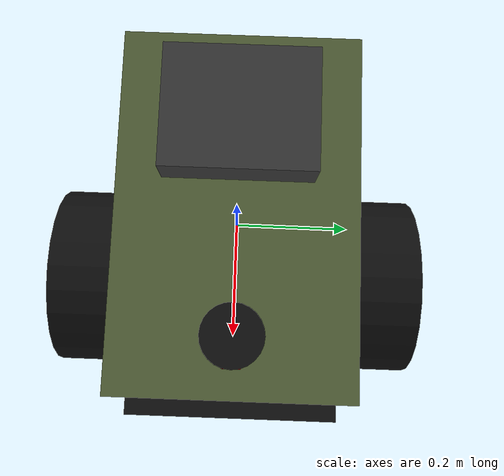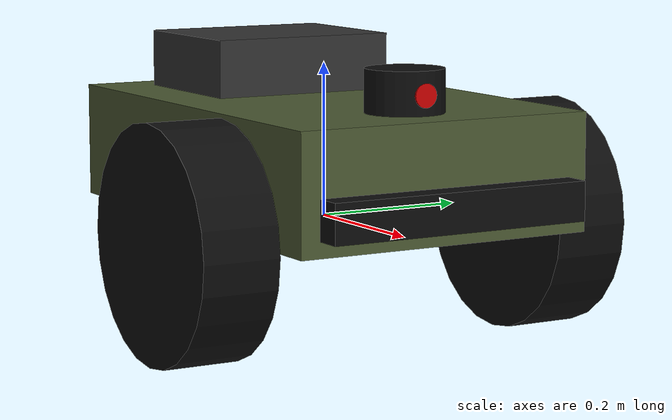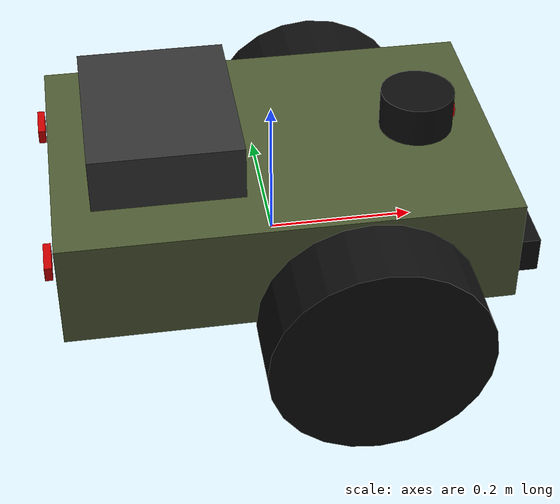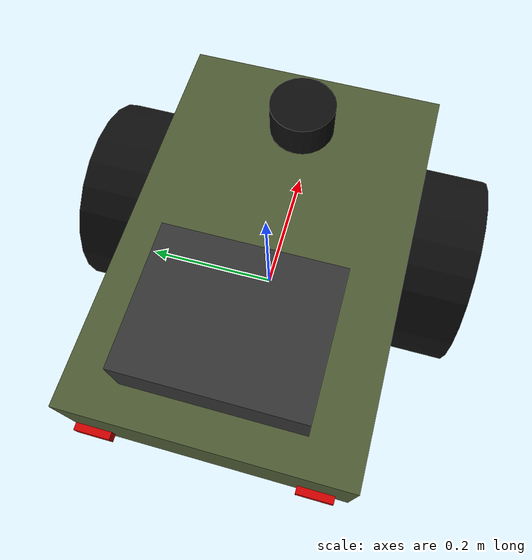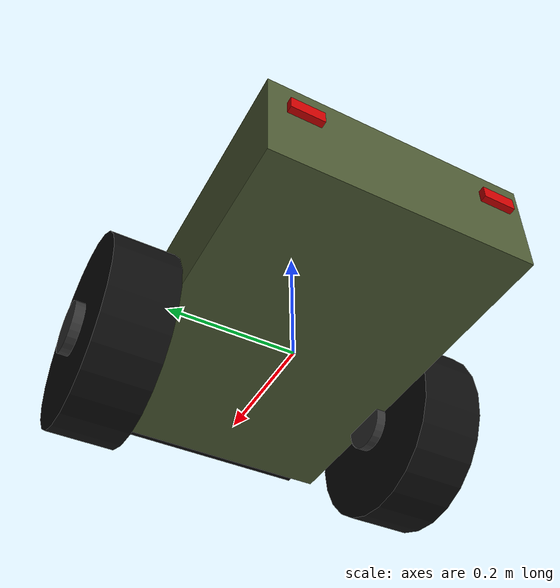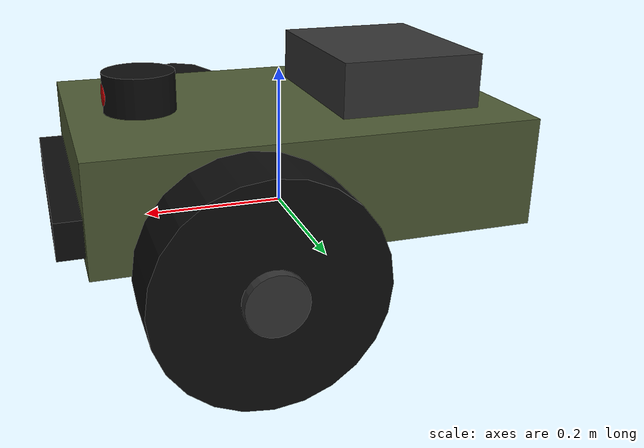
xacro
<?xml version="1.0"?>
<robot name="rover" xmlns:xacro="http://ros.org/wiki/xacro">

  <xacro:arg name="robot_name" default="my_rover"/>
  <xacro:arg name="color" default="Olive"/>

  <material name="Olive"><color rgba="0.3 0.35 0.2 1"/></material>   <material name="Desert"><color rgba="0.76 0.7 0.5 1"/></material>  <material name="DarkGrey"><color rgba="0.2 0.2 0.2 1"/></material> <material name="Black"><color rgba="0.05 0.05 0.05 1"/></material> <material name="RedLight"><color rgba="0.8 0 0 1"/></material>     <link name="base_link">
    <visual>
      <origin xyz="0 0 0.08" rpy="0 0 0"/>
      <geometry><box size="0.6 0.4 0.15"/></geometry>
      <material name="$(arg color)"/>
    </visual>

    <visual>
      <origin xyz="-0.15 0 0.18" rpy="0 0 0"/>
      <geometry><box size="0.2 0.25 0.1"/></geometry>
      <material name="DarkGrey"/>
    </visual>

    <visual>
      <origin xyz="0.31 0 0.05" rpy="0 0 0"/>
      <geometry><box size="0.05 0.35 0.05"/></geometry>
      <material name="Black"/>
    </visual>

    <visual>
      <origin xyz="-0.31 0.15 0.1" rpy="0 0 0"/>
      <geometry><box size="0.01 0.05 0.02"/></geometry>
      <material name="RedLight"/>
    </visual>
    <visual>
      <origin xyz="-0.31 -0.15 0.1" rpy="0 0 0"/>
      <geometry><box size="0.01 0.05 0.02"/></geometry>
      <material name="RedLight"/>
    </visual>

    <collision>
      <origin xyz="0 0 0.08" rpy="0 0 0"/>
      <geometry><box size="0.65 0.70 0.2"/></geometry>
    </collision>

    <inertial>
      <mass value="15.0"/> <inertia ixx="0.2" ixy="0" ixz="0" iyy="0.2" iyz="0" izz="0.2"/>
    </inertial>
  </link>

  <gazebo reference="base_link">
    <material>
      <ambient>${'0.2 0.25 0.15 1' if '$(arg color)' == 'Olive' else '0.6 0.5 0.4 1'}</ambient>
      <diffuse>${'0.2 0.25 0.15 1' if '$(arg color)' == 'Olive' else '0.6 0.5 0.4 1'}</diffuse>
    </material>
  </gazebo>

  <xacro:macro name="wheel" params="prefix y_offset">
    <link name="${prefix}_wheel">
      <visual>
        <geometry><cylinder radius="0.15" length="0.1"/></geometry>
        <material name="Black"/>
      </visual>
      <visual>
        <origin xyz="0 0 0.055" rpy="0 0 0"/>
        <geometry><cylinder radius="0.04" length="0.02"/></geometry>
        <material name="DarkGrey"/>
      </visual>

      <collision>
        <geometry><cylinder radius="0.15" length="0.1"/></geometry>
      </collision>
      <inertial>
        <mass value="2.0"/>
        <inertia ixx="0.05" ixy="0" ixz="0" iyy="0.05" iyz="0" izz="0.05"/>
      </inertial>
    </link>

    <joint name="${prefix}_wheel_joint" type="continuous">
      <parent link="base_link"/>
      <child link="${prefix}_wheel"/>
      <origin xyz="0.1 ${y_offset} 0.0" rpy="-1.5707 0 0"/>
      <axis xyz="0 0 1"/>
    </joint>

    <gazebo reference="${prefix}_wheel">
      <material>Gazebo/Black</material>
      <mu1>1.0</mu1> <mu2>1.0</mu2>
    </gazebo>
  </xacro:macro>

  <xacro:wheel prefix="left" y_offset="0.25"/>
  <xacro:wheel prefix="right" y_offset="-0.25"/>

  <link name="caster_wheel">
    <collision>
      <geometry><sphere radius="0.05"/></geometry>
    </collision>
    <inertial>
      <mass value="0.5"/>
      <inertia ixx="0.001" ixy="0" ixz="0" iyy="0.001" iyz="0" izz="0.001"/>
    </inertial>
  </link>
  <joint name="caster_joint" type="fixed">
    <parent link="base_link"/>
    <child link="caster_wheel"/>
    <origin xyz="-0.25 0 -0.1"/>
  </joint>
  <gazebo reference="caster_wheel">
    <material>Gazebo/Black</material>
    <mu1>0.1</mu1> <mu2>0.1</mu2>
  </gazebo>

  <link name="lidar_link">
    <visual>
      <origin xyz="0 0 0" rpy="0 0 0"/>
      <geometry><cylinder radius="0.05" length="0.06"/></geometry>
      <material name="Black"/>
    </visual>
    <visual>
      <origin xyz="0.04 0 0" rpy="0 1.57 0"/>
      <geometry><cylinder radius="0.015" length="0.02"/></geometry>
      <material name="RedLight"/>
    </visual>
  </link>
  <joint name="lidar_joint" type="fixed">
    <parent link="base_link"/>
    <child link="lidar_link"/>
    <origin xyz="0.2 0 0.18" rpy="0 0 0"/> </joint>

  <gazebo>
    <plugin filename="gz-sim-diff-drive-system" name="gz::sim::systems::DiffDrive">
      <left_joint>left_wheel_joint</left_joint>
      <right_joint>right_wheel_joint</right_joint>
      <wheel_separation>0.5</wheel_separation> <wheel_radius>0.15</wheel_radius>     <odom_publish_frequency>20</odom_publish_frequency>
      <topic>/model/$(arg robot_name)/cmd_vel</topic>
      <odom_topic>/odom_wheel_unused</odom_topic>
      <frame_id>odom</frame_id>
      <child_frame_id>base_link</child_frame_id>
    </plugin>
  </gazebo>

  <gazebo>
    <plugin filename="gz-sim-odometry-publisher-system"
            name="gz::sim::systems::OdometryPublisher">
      <odom_frame>world</odom_frame>
      <robot_base_frame>base_link</robot_base_frame>
      <dimensions>3</dimensions>
      <odom_topic>/model/$(arg robot_name)/odometry</odom_topic>
      <odom_publish_frequency>20</odom_publish_frequency>
    </plugin>
  </gazebo>

  <gazebo reference="lidar_link">
    <sensor name="lidar" type="gpu_lidar">
      <pose>0 0 0 0 0 0</pose>
      <topic>/model/$(arg robot_name)/scan</topic>
      <update_rate>10</update_rate>
      <ray>
        <scan>
          <horizontal>
            <samples>360</samples>
            <resolution>1</resolution>
            <min_angle>-1.57</min_angle>
            <max_angle>1.57</max_angle>
          </horizontal>
        </scan>
        <range>
          <min>0.2</min>
          <max>8.0</max> </range>
      </ray>
      <always_on>1</always_on>
      <visualize>true</visualize>
    </sensor>
  </gazebo>

</robot>
